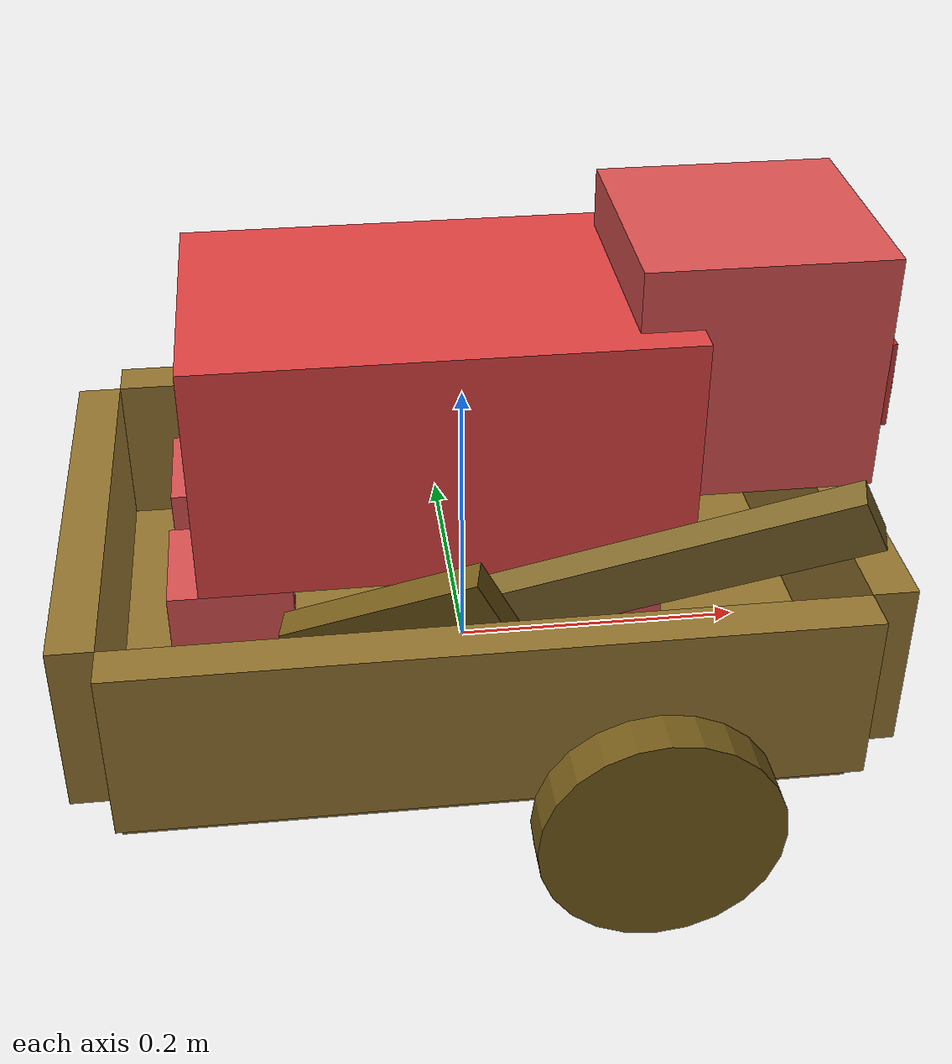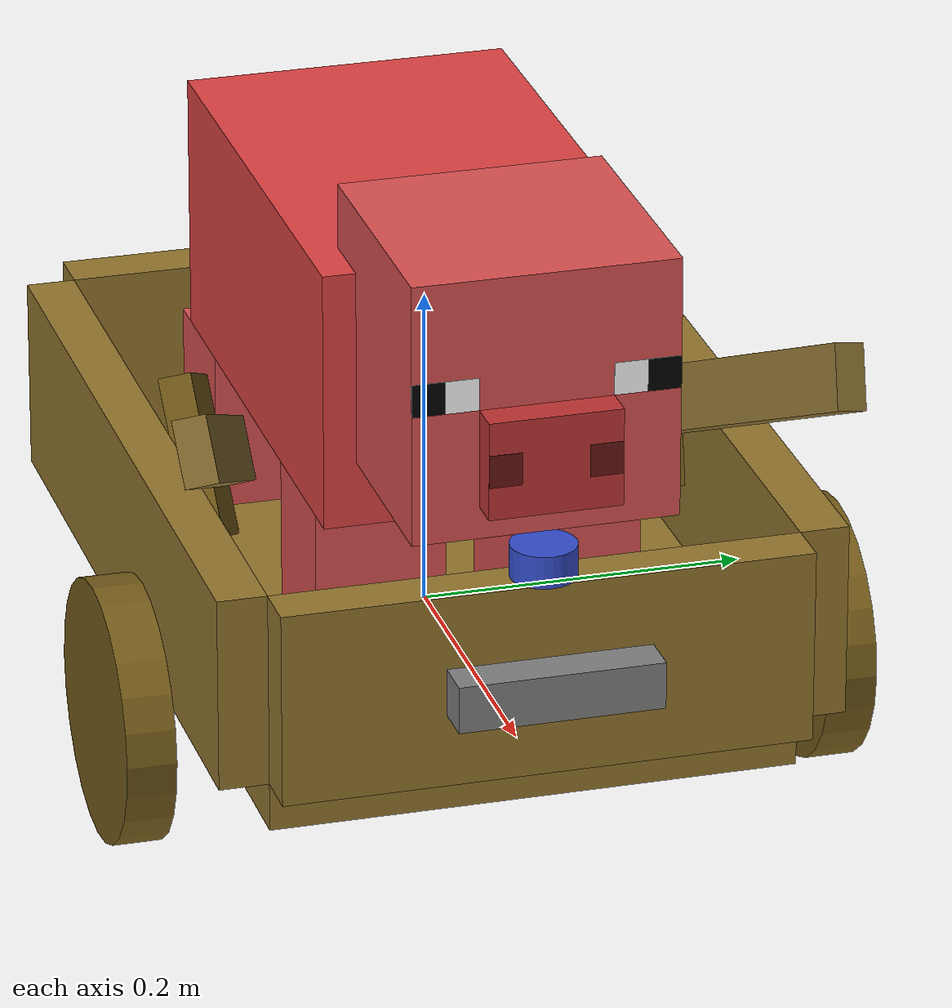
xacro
<?xml version="1.0"?>
<robot name="robot" xmlns:xacro="http://ros.org/wiki/xacro">
    <xacro:include filename="gazebo.urdf.xacro" />
    <xacro:include filename="lidar.urdf.xacro" />
    <xacro:include filename="depth.urdf.xacro" />

    <!-- Define robot constants -->

    <!-- Values order for is: length, width, height -->

    <!-- Boat -->
    <xacro:property name="bottom_size" value="0.48 0.32 0.04"/>
    <xacro:property name="bottom_x" value="0.48"/>
    <xacro:property name="bottom_y" value="0.32"/>
    <xacro:property name="bottom_z" value="0.04"/>

    <xacro:property name="long_side_size" value="0.48 0.03 0.12"/>
    <xacro:property name="long_side_x" value="0.48"/>
    <xacro:property name="long_side_y" value="0.03"/>
    <xacro:property name="long_side_z" value="0.12"/>

    <xacro:property name="short_side_size" value="0.03 0.32 0.12"/>
    <xacro:property name="short_side_x" value="0.03"/>
    <xacro:property name="short_side_y" value="0.32"/>
    <xacro:property name="short_side_z" value="0.12"/>

    <!-- Paddles -->
    <xacro:property name="paddle_handle_size" value="0.02 0.04 0.32"/>
    <xacro:property name="paddle_handle_x" value="0.02"/>
    <xacro:property name="paddle_handle_y" value="0.04"/>
    <xacro:property name="paddle_handle_z" value="0.32"/>

    <xacro:property name="paddle_plate_size" value="0.02 0.10 0.14"/>
    <xacro:property name="paddle_plate_x" value="0.02"/>
    <xacro:property name="paddle_plate_y" value="0.10"/>
    <xacro:property name="paddle_plate_z" value="0.14"/>

    <!-- Pig -->
    <xacro:property name="body_size" value="0.32 0.20 0.16"/>
    <xacro:property name="body_x" value="0.32"/>
    <xacro:property name="body_y" value="0.20"/>
    <xacro:property name="body_z" value="0.16"/>

    <xacro:property name="leg_size" value="0.08 0.08 0.12"/>
    <xacro:property name="leg_x" value="0.08"/>
    <xacro:property name="leg_y" value="0.08"/>
    <xacro:property name="leg_z" value="0.12"/>

    <xacro:property name="head_size" value="0.16 0.16 0.16"/>
    <xacro:property name="head_x" value="0.16"/>
    <xacro:property name="head_y" value="0.16"/>
    <xacro:property name="head_z" value="0.16"/>

    <xacro:property name="nose_size" value="0.02 0.08 0.06"/>
    <xacro:property name="nose_x" value="0.02"/>
    <xacro:property name="nose_y" value="0.08"/>
    <xacro:property name="nose_z" value="0.06"/>

    <xacro:property name="square_size" value="0.0001 0.02 0.02"/>

    <!-- Wheels -->
    <xacro:property name="wheel_radius" value="0.08"/>
    <xacro:property name="wheel_width" value="0.03"/>

    <!-- Mass -->
    <xacro:property name="boat_mass" value="1"/>
    <xacro:property name="pig_mass" value="0.5"/>
    <xacro:property name="wheel_mass" value="0.1"/>
    <xacro:property name="caster_wheel_mass" value="0.005"/>

    <!-- INERTIAL MACROS -->

    <!-- Values order is width, height, depth -->
    <xacro:macro name="box_inertia" params="m x y z xyz rpy">
        <inertial>
            <origin xyz="0 0 0" rpy="0 0 0"/>
            <mass value="${m}"/>
            <inertia ixx="${(m/12) * (z*z + y*y)}" ixy="0.0" ixz="0.0" iyy="${(m/12) * (x*x + y*y)}" iyz="0.0" izz="${(m/12) * (x*x + z*z)}"/>
        </inertial>
    </xacro:macro>

    <xacro:macro name="cylinder_inertia" params="m r h xyz rpy">
        <inertial>
            <origin xyz="0 0 0" rpy="0 0 0"/>
            <mass value="${m}"/>
            <inertia ixx="${(m/12) * (3*r*r + h*h)}" ixy = "0" ixz = "0" iyy="${(m/12) * (3*r*r + h*h)}" iyz = "0" izz="${(m/2) * (r*r)}"/>
        </inertial>
    </xacro:macro>

    <xacro:macro name="sphere_inertia" params="m r xyz rpy">
        <inertial>
            <origin xyz="0 0 0" rpy="0 0 0"/>
            <mass value="${m}"/>
            <inertia ixx="${(2/5) * m * (r*r)}" ixy="0.0" ixz="0.0" iyy="${(2/5) * m * (r*r)}" iyz="0.0" izz="${(2/5) * m * (r*r)}"/>
        </inertial>
    </xacro:macro>

    <!-- LINKS -->

    <!-- BOAT -->
    <link name="bottom_link">
        <visual>
            <geometry>
                <box size="${bottom_size}"/>
            </geometry>
            <material name="Wood">
                <color rgba="0.58 0.46 0.18 1.0"/>
            </material>
        </visual>

        <collision>
            <geometry>
                <box size="${bottom_size}"/>
            </geometry>
        </collision>

        <xacro:box_inertia m="${boat_mass}" x="${bottom_x}" y="${bottom_y}" z="${bottom_z}" xyz="0 0 0" rpy="0 0 0" />
    </link>

    <xacro:macro name="shared_side_link" params="name mass_coef size x y z xyz rpy">
        <link name="${name}">
            <visual>
                <geometry>
                    <box size="${size}"/>
                </geometry>
                <material name="Wood">
                    <color rgba="0.58 0.46 0.18 1.0"/>
                </material>
            </visual>

            <collision>
                <geometry>
                    <box size="${size}"/>
                </geometry>
            </collision>

            <xacro:box_inertia m="${boat_mass*mass_coef}" x="${x}" y="${y}" z="${z}" xyz="0 0 0" rpy="0 0 0" />
        </link>

        <joint name="${name}_joint" type="fixed">
            <parent link="bottom_link" />
            <child link="${name}" />
            <origin xyz="${xyz}" rpy="${rpy}" />
        </joint>
    </xacro:macro>

    <xacro:macro name="shared_paddle_link" params="name plate_name parent_name xyz rpy">
        <link name="${name}">
            <visual>
                <geometry>
                    <box size="${paddle_handle_size}"/>
                </geometry>
                <material name="Wood">
                    <color rgba="0.52 0.42 0.18 1.0"/>
                </material>
            </visual>
        </link>

        <link name="${plate_name}">
            <visual>
                <geometry>
                    <box size="${paddle_plate_size}"/>
                </geometry>
                <material name="Wood">
                    <color rgba="0.46 0.36 0.10 1.0"/>
                </material>
            </visual>
        </link>

        <joint name="${plate_name}_joint" type="fixed">
            <parent link="${name}" />
            <child link="${plate_name}" />
            <origin xyz="0.02 0 0.14" rpy="0 0 0" />
        </joint>

        <joint name="${name}_joint" type="fixed">
            <parent link="${parent_name}" />
            <child link="${name}" />
            <origin xyz="${xyz}" rpy="${rpy}" />
        </joint>
    </xacro:macro>

    <!-- PIG -->

    <link name="body_link">
        <visual>
            <geometry>
                <box size="${body_size}"/>
            </geometry>
            <material name="Pink">
                <color rgba="0.88 0.26 0.26 1.0"/>
            </material>
        </visual>

        <collision>
            <geometry>
                <box size="${body_size}"/>
            </geometry>
        </collision>

        <xacro:box_inertia m="${pig_mass}" x="${body_x}" y="${body_y}" z="${body_z}" xyz="0.02 0 0.20" rpy="0 0 0" />
    </link>

    <link name="head_link">
        <visual>
            <geometry>
                <box size="${head_size}"/>
            </geometry>
            <material name="Pink">
                <color rgba="0.859 0.318 0.318 1.0"/>
            </material>
        </visual>
        <collision>
            <geometry>
                <box size="${head_size}"/>
            </geometry>
        </collision>

        <xacro:box_inertia m="${pig_mass/3}" x="${head_x}" y="${head_y}" z="${head_z}" xyz="0.20 0 0.04" rpy="0 0 0" />
    </link>

    <link name="nose_link">
        <visual>
            <geometry>
                <box size="${nose_size}"/>
            </geometry>
            <material name="Pink">
                <color rgba="0.75 0.20 0.20 1.0"/>
            </material>
        </visual>
        <collision>
            <geometry>
                <box size="${nose_size}"/>
            </geometry>
        </collision>

        <xacro:box_inertia m="${pig_mass/10}" x="${nose_x}" y="${nose_y}" z="${nose_z}" xyz="0.09 0 -0.03" rpy="0 0 0" />
    </link>

    <xacro:macro name="shared_leg_link" params="name xyz rpy">
        <link name="${name}">
            <visual>
                <geometry>
                    <box size="${leg_size}"/>
                </geometry>
                <material name="Pink">
                    <color rgba="0.859 0.318 0.318 1.0"/>
                </material>
            </visual>
            <collision>
                <geometry>
                    <box size="${leg_size}"/>
                </geometry>
            </collision>

            <xacro:box_inertia m="${pig_mass/4}" x="${leg_x}" y="${leg_y}" z="${leg_z}" xyz="${xyz}" rpy="${rpy}" />
        </link>

        <joint name="${name}_joint" type="fixed">
            <parent link="body_link" />
            <child link="${name}" />
            <origin xyz="${xyz}" rpy="${rpy}" />
        </joint>
    </xacro:macro>

    <xacro:macro name="shared_square_link" params="name xyz rpy color_name color">
        <link name="${name}">
            <visual>
                <geometry>
                    <box size="${square_size}"/>
                </geometry>
                <material name="${color_name}">
                    <color rgba="${color}"/>
                </material>
            </visual>
        </link>

        <joint name="${name}_joint" type="fixed">
            <parent link="head_link" />
            <child link="${name}" />
            <origin xyz="${xyz}" rpy="${rpy}" />
        </joint>
    </xacro:macro>

    <!-- Caster wheel -->

    <link name="base_footprint" />

    <joint name="footprint_joint" type="fixed">
        <parent link="bottom_link"/>
        <child link="base_footprint"/>
        <origin xyz="0.0 0.0 ${-(wheel_radius)}" rpy="0 0 0"/>
    </joint>

    <link name="caster_wheel_link">
        <visual>
            <geometry>
                <sphere radius="${wheel_radius/4}" />
            </geometry>
            <material name="Dark Wood">
                <color rgba="0.46 0.36 0.10 1.0"/>
            </material>
        </visual>
        <collision>
            <geometry>
                <sphere radius="${wheel_radius/4}" />
            </geometry>
        </collision>

        <xacro:sphere_inertia m="${caster_wheel_mass}" r="${wheel_radius/4}" xyz="-0.16 0 -0.06" rpy="0 0 0"/>
    </link>

    <joint name="caster_wheel_joint" type="fixed">
        <parent link="bottom_link" />
        <child link="caster_wheel_link" />
        <origin xyz="-0.16 0 -0.06" rpy="0 0 0" />
    </joint>

    <!-- Wheels -->

    <xacro:macro name="shared_wheel_link" params="name x_angle xyz">
        <link name="${name}_link">
            <visual>
                <geometry>
                    <cylinder radius="${wheel_radius}" length="${wheel_width}"/>
                </geometry>
                <material name="Dark Wood">
                    <color rgba="0.46 0.36 0.10 1.0"/>
                </material>
            </visual>
            <collision>
                <geometry>
                    <cylinder radius="${wheel_radius}" length="${wheel_width}"/>
                </geometry>
            </collision>

            <xacro:cylinder_inertia m="${wheel_mass}" r="${wheel_radius}" h="${wheel_width}" xyz="${xyz}" rpy="${x_angle} 0 0" />
        </link>

        <joint name="${name}_joint" type="continuous">
            <parent link="bottom_link" />
            <child link="${name}_link" />
            <origin xyz="${xyz}" rpy="${x_angle} 0 0" />
            <axis xyz="0 0 ${-x_angle/(pi/2)}" />
        </joint>
    </xacro:macro>

    <!-- JOINTS -->
    <joint name="pig_joint" type="fixed">
        <parent link="bottom_link" />
        <child link="body_link" />
        <origin xyz="-0.02 0 0.20" rpy="0 0 0" />
    </joint>

    <joint name="head_joint" type="fixed">
        <parent link="body_link" />
        <child link="head_link" />
        <origin xyz="0.20 0 0.04" rpy="0 0 0" />
    </joint>

    <joint name="nose_joint" type="fixed">
        <parent link="head_link" />
        <child link="nose_link" />
        <origin xyz="0.09 0 -0.03" rpy="0 0 0" />
    </joint>

    <xacro:shared_leg_link name="front_right_leg" xyz="0.1 -0.06 -0.14" rpy="0 0 0" />
    <xacro:shared_leg_link name="front_left_leg" xyz="0.1 0.06 -0.14" rpy="0 0 0" />
    <xacro:shared_leg_link name="back_right_leg" xyz="-0.14 -0.06 -0.14" rpy="0 0 0" />
    <xacro:shared_leg_link name="back_left_leg" xyz="-0.14 0.06 -0.14" rpy="0 0 0" />

    <xacro:shared_square_link name="left_pupil" xyz="0.0801 -0.07 0.01" rpy="0 0 0" color_name="Black" color="0 0 0 1" />
    <xacro:shared_square_link name="right_pupil" xyz="0.0801 0.07 0.01" rpy="0 0 0" color_name="Black" color="0 0 0 1" />
    <xacro:shared_square_link name="left_eyeball" xyz="0.0801 -0.05 0.01" rpy="0 0 0" color_name="White" color="1 1 1 1" />
    <xacro:shared_square_link name="right_eyeball" xyz="0.0801 0.05 0.01" rpy="0 0 0" color_name="White" color="1 1 1 1" />

    <xacro:shared_square_link name="left_nostril" xyz="0.1001 -0.03 -0.03" rpy="0 0 0" color_name="Brown" color="0.4 0.08 0.07 1" />
    <xacro:shared_square_link name="right_nostril" xyz="0.1001 0.03 -0.03" rpy="0 0 0" color_name="Brown" color="0.4 0.08 0.07 1" />

    <xacro:shared_side_link name="right_side" size="${long_side_size}" mass_coef="0.4" x="${long_side_x}" y="${long_side_y}" z="${long_side_z}" xyz="0 -0.175 0.07" rpy="0 0 0" />
    <xacro:shared_side_link name="left_side" size="${long_side_size}" mass_coef="0.4" x="${long_side_x}" y="${long_side_y}" z="${long_side_z}" xyz="0 0.175 0.07" rpy="0 0 0" />
    <xacro:shared_side_link name="front_side" size="${short_side_size}" mass_coef="0.2" x="${short_side_x}" y="${short_side_y}" z="${short_side_z}" xyz="0.255 0 0.07" rpy="0 0 0" />
    <xacro:shared_side_link name="back_side" size="${short_side_size}" mass_coef="0.2" x="${short_side_x}" y="${short_side_y}" z="${short_side_z}" xyz="-0.255 0 0.07" rpy="0 0 0" />

    <xacro:shared_paddle_link name="right_paddle" plate_name="right_paddle_plate" parent_name="right_side" xyz="0.08 0.025 0.08" rpy="2.0 0.2 -1.8" />
    <xacro:shared_paddle_link name="left_paddle" plate_name="left_paddle_plate" parent_name="left_side" xyz="0.08 -0.025 0.08" rpy="-2.0 0.2 1.8" />

    <xacro:shared_wheel_link name="right_wheel" x_angle="${pi/2}" xyz="0.1 -0.215 0" />
    <xacro:shared_wheel_link name="left_wheel" x_angle="-${pi/2}" xyz="0.1 0.215 0" />

    <gazebo reference="caster_wheel_link">
        <material>Gazebo/White</material>
        <mu1 value="0.001"/>
        <mu2 value="0.001"/>
    </gazebo>

</robot>

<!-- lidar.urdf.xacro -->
<robot xmlns:xacro="http://www.ros.org/wiki/xacro">

    <link name="laser_frame">
        <visual>
            <geometry>
                <cylinder radius="0.02" length="0.02"/>
            </geometry>
            <material name="Blue">
                <color rgba="0.2 0.3 0.8 1"/>
            </material>
        </visual>
        <collision>
            <geometry>
                <cylinder radius="0.05" length="0.02"/>
            </geometry>
        </collision>
        <inertial>
            <mass value="0.01"/>
            <inertia ixx="0.001" iyy="0.001" izz="0.001" ixy="0" ixz="0" iyz="0"/>
        </inertial>
    </link>

    <joint name="laser_joint" type="fixed">
        <parent link="front_side" />
        <child link="laser_frame" />
        <origin xyz="0 0 0.07" rpy="0 0 ${pi/2}" />
    </joint>

    <gazebo reference="laser_frame">
        <material>Gazebo/Blue</material>

        <sensor name='laser_sensor_frame' type='gpu_lidar'>"
            <gz_frame_id>robot/laser_frame</gz_frame_id>
            <pose> 0 0 0 0 0 0 </pose>
            <visualize>true</visualize>
            <always_on>true</always_on>
            <update_rate>10</update_rate>
            <ray>
                <scan>
                    <horizontal>
                        <samples>360</samples>
                        <min_angle>-3.14</min_angle>
                        <max_angle>3.14</max_angle>
                    </horizontal>
                </scan>
                <range>
                    <min>0.3</min>
                    <max>12</max>
                </range>
                <noise>
                    <type>gaussian</type>
                    <mean>0.0</mean>
                    <stddev>0.007</stddev>
                </noise>
            </ray>
        </sensor>
    </gazebo>

</robot>

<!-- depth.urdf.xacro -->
<robot xmlns:xacro="http://www.ros.org/wiki/xacro">

    <joint name="depth_joint" type="fixed">
        <parent link="front_side"/>
        <child link="depth_frame"/>
        <origin xyz="0.0275 0 0" rpy="0 0 0"/>
    </joint>

    <material name="aluminum">
      <color rgba="0.5 0.5 0.5 1"/>
    </material>

    <link name="depth_frame">
        <visual>
            <geometry>
                <box size="0.026 0.124 0.029" />
            </geometry>
            <material name="aluminum"/>
        </visual>
        <collision>
            <origin xyz="0 0 0" rpy="0 0 0"/>
            <geometry>
                <box size="0.026 0.124 0.029"/>
            </geometry>
        </collision>
        <inertial>
            <origin xyz="0 0 0" rpy="0 0 0"/>
            <mass value="0.116" />
            <inertia ixx="${(1/12) * 0.116 * (0.026*0.026+0.029*0.029)}" ixy="0.0" ixz="0.0"
                     iyy="${(1/12) * 0.116 * (0.124*0.124+0.029*0.029)}" iyz="0.0"
                     izz="${(1/12) * 0.116 * (0.124*0.124+0.026*0.026)}" />
        </inertial>
    </link>

    <gazebo reference="depth_frame">
        <sensor name="depth_sensor_frame" type="depth_camera">
            <gz_frame_id>robot/depth_frame</gz_frame_id>
            <pose>0 0.0175 0.0125 0 0 0</pose>
            <update_rate>6</update_rate>
            <always_on>0</always_on>
            <camera>
                <horizontal_fov>1.51843645</horizontal_fov>
                <image>
                    <width>848</width>
                    <height>480</height>
                    <format>R_FLOAT32</format>
                </image>
                <clip>
                    <near>0.1</near>
                    <far>10</far>
                </clip>
                <lens>
                    <intrinsics>
                        <fx>421.61578369140625</fx>
                        <fy>421.61578369140625</fy>
                        <cx>422.2854309082031</cx>
                        <cy>236.57237243652344</cy>
                        <s>0</s>
                    </intrinsics>
                </lens>
            </camera>
        </sensor>
    </gazebo>

</robot>
